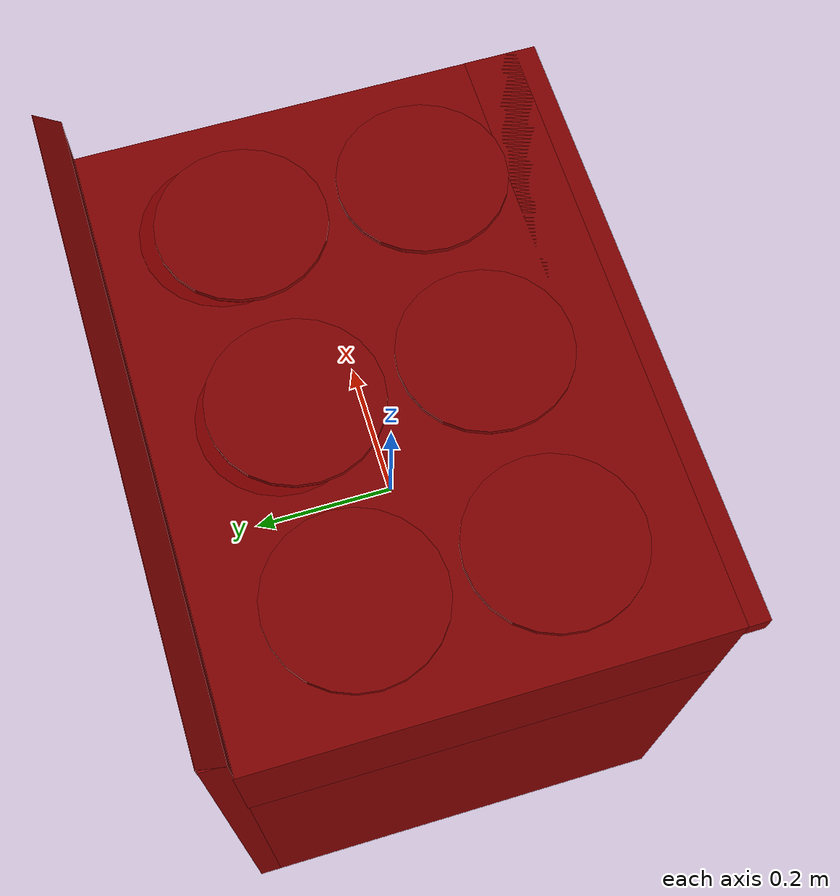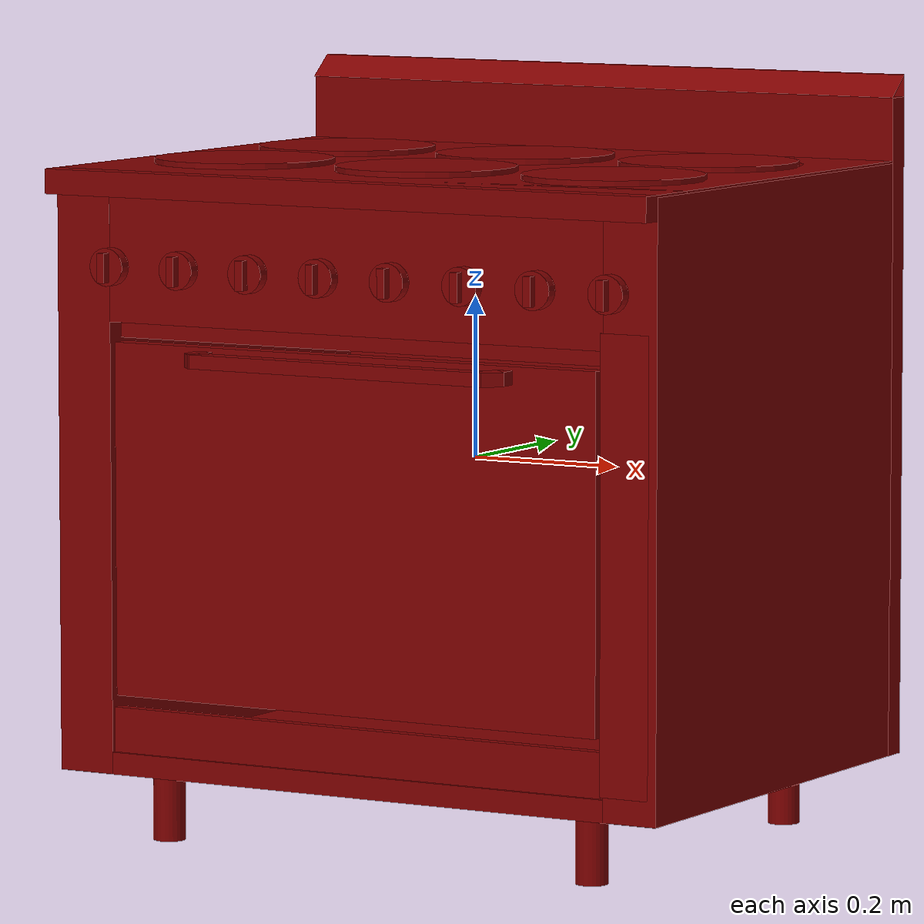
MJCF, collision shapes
<?xml version='1.0' encoding='UTF-8'?>
<mujoco model="model">
  <option timestep="0.002" gravity="0.0 0.0 -9.81"/>
  <compiler angle="radian"/>
  <asset>
    <mesh file="visuals/knob_front_center.obj" name="knob_front_center_vis"/>
    <mesh file="visuals/knob_front_left.obj" name="knob_front_left_vis"/>
    <mesh file="visuals/knob_front_right.obj" name="knob_front_right_vis"/>
    <mesh file="visuals/knob_rear_center.obj" name="knob_rear_center_vis"/>
    <mesh file="visuals/knob_rear_left.obj" name="knob_rear_left_vis"/>
    <mesh file="visuals/knob_rear_right.obj" name="knob_rear_right_vis"/>
    <mesh file="visuals/Body001.obj" name="Body001_vis"/>
    <mesh file="visuals/Door001.obj" name="Door001_vis"/>
    <mesh file="visuals/Door001_Clear.obj" name="Door001_Clear_vis"/>
    <mesh file="visuals/Knob001.obj" name="Knob001_vis"/>
    <mesh file="visuals/Knob002.obj" name="Knob002_vis"/>
    <mesh file="visuals/Shelf001.obj" name="Shelf001_vis"/>
    <mesh file="visuals/Shelf002.obj" name="Shelf002_vis"/>
    <texture file="visuals/T_BC001.png" name="Body001_material" type="2d"/>
    <material name="Body001_material" rgba="1 1 1 1.0" texture="Body001_material" shininess="0.1" specular="3"/>
    <texture file="visuals/T_BC001.png" name="knob_front_center_material" type="2d"/>
    <material name="knob_front_center_material" rgba="1 1 1 1.0" texture="knob_front_center_material" shininess="0.1" specular="3"/>
    <texture file="visuals/T_BC001.png" name="knob_front_left_material" type="2d"/>
    <material name="knob_front_left_material" rgba="1 1 1 1.0" texture="knob_front_left_material" shininess="0.1" specular="3"/>
    <texture file="visuals/T_BC001.png" name="knob_front_right_material" type="2d"/>
    <material name="knob_front_right_material" rgba="1 1 1 1.0" texture="knob_front_right_material" shininess="0.1" specular="3"/>
    <texture file="visuals/T_BC001.png" name="knob_rear_center_material" type="2d"/>
    <material name="knob_rear_center_material" rgba="1 1 1 1.0" texture="knob_rear_center_material" shininess="0.1" specular="3"/>
    <texture file="visuals/T_BC001.png" name="knob_rear_left_material" type="2d"/>
    <material name="knob_rear_left_material" rgba="1 1 1 1.0" texture="knob_rear_left_material" shininess="0.1" specular="3"/>
    <texture file="visuals/T_BC001.png" name="knob_rear_right_material" type="2d"/>
    <material name="knob_rear_right_material" rgba="1 1 1 1.0" texture="knob_rear_right_material" shininess="0.1" specular="3"/>
    <texture file="visuals/T_BC001.png" name="Door001_material" type="2d"/>
    <material name="Door001_material" rgba="1 1 1 1.0" texture="Door001_material" shininess="0.1" specular="3"/>
    <material name="Door001_Clear_material" rgba="0.048628754913806915 0.048628754913806915 0.048628754913806915 0.5" shininess="0.5" specular="0.3103448502657381"/>
    <texture file="visuals/T_BC001.png" name="Knob001_material" type="2d"/>
    <material name="Knob001_material" rgba="1 1 1 1.0" texture="Knob001_material" shininess="0.1" specular="3"/>
    <texture file="visuals/T_BC001.png" name="Knob002_material" type="2d"/>
    <material name="Knob002_material" rgba="1 1 1 1.0" texture="Knob002_material" shininess="0.1" specular="3"/>
    <texture file="visuals/T_BC001.png" name="Shelf001_material" type="2d"/>
    <material name="Shelf001_material" rgba="1 1 1 1.0" texture="Shelf001_material" shininess="0.1" specular="3"/>
    <texture file="visuals/T_BC001.png" name="Shelf002_material" type="2d"/>
    <material name="Shelf002_material" rgba="1 1 1 1.0" texture="Shelf002_material" shininess="0.1" specular="3"/>
  </asset>
  <default>
    <default class="visual">
      <geom conaffinity="0" contype="0" group="1" type="mesh"/>
    </default>
    <default class="collision">
      <geom group="0" rgba="0.5 0 0 0.5"/>
    </default>
    <default class="spawn">
      <geom group="0" rgba="1 1 1 0.5" contype="0" conaffinity="0"/>
      <site group="0" rgba="1 1 1 0.5"/>
    </default>
    <default class="region">
      <geom group="1" conaffinity="0" contype="0" rgba="0 1 0 0"/>
    </default>
  </default>
  <worldbody>
    <body>
      <body name="object">
        <geom mesh="Body001_vis" type="mesh" solimp="0.998 0.998 0.001" solref="0.001 1" friction="0.95 0.3 0.1" class="visual" material="Body001_material"/>
        <geom class="collision" type="box" pos="0.0009991551050916314 0.32055824995040894 0.029305987060070038" size="0.41986000537872314 0.015738798305392265 0.4128369987010956" quat="1.0 0.0 0.0 0.0" density="1000.0"/>
        <geom class="collision" type="box" pos="-6.367638340666677e-17 0.32031571865081787 0.45546573400497437" size="0.42060387134552 0.02045418694615364 0.0005000059027224779" quat="0.9397256374359131 0.34192946553230286 -7.59235930863473e-17 3.5777871277648934e-24" density="1000.0"/>
        <geom class="collision" type="box" pos="-7.158653293349906e-17 0.3360876142978668 0.45539191365242004" size="0.4205954372882843 0.00020943980780430138 0.014329597353935242" quat="1.0 0.0 0.0 0.0" density="1000.0"/>
        <geom class="collision" type="box" pos="0.00106047501321882 0.28167325258255005 -0.09054946899414062" size="0.41953495144844055 0.016514159739017487 0.27135932445526123" quat="1.0 0.0 0.0 0.0" density="1000.0"/>
        <geom class="collision" type="box" pos="0.0008671018294990063 0.0038781710900366306 0.2706303298473358" size="0.4197283387184143 0.3026042878627777 0.09329330176115036" quat="1.0 0.0 0.0 0.0" density="1000.0"/>
        <geom class="collision" type="box" pos="0.0009372210479341447 0.002938526915386319 -0.36970576643943787" size="0.41965821385383606 0.3018638789653778 0.013855750672519207" quat="1.0 0.0 0.0 0.0" density="1000.0"/>
        <geom class="collision" type="box" pos="0.3847431540489197 0.0037059225142002106 -0.011078834533691406" size="0.03611601144075394 0.30272454023361206 0.37200498580932617" quat="1.0 0.0 0.0 0.0" density="1000.0"/>
        <geom class="collision" type="box" pos="-0.38106897473335266 0.0037059225142002106 -0.011078834533691406" size="0.03779188171029091 0.3027247488498688 0.37200498580932617" quat="1.0 0.0 0.0 0.0" density="1000.0"/>
        <geom class="collision" type="box" pos="0.37729743123054504 0.0037059225142002106 -0.07712187618017197" size="0.03237057849764824 0.3027249574661255 0.2757500112056732" quat="1.0 0.0 0.0 0.0" density="1000.0"/>
        <geom class="collision" type="box" pos="0.0009916865965351462 -0.27736935019493103 0.34854137897491455" size="0.4198143482208252 0.04959246888756752 0.015382237732410431" quat="1.0 0.0 0.0 0.0" density="1000.0"/>
        <geom class="collision" type="box" pos="-0.006441392935812473 -0.2696748375892639 0.16858352720737457" size="0.34016379714012146 0.005052691791206598 0.012017963454127312" quat="1.0 0.0 0.0 0.0" density="1000.0"/>
        <geom class="collision" type="box" pos="-0.006441392935812473 -0.28656005859375 -0.32885345816612244" size="0.37182310223579407 0.006954135838896036 0.028841743245720863" quat="1.0 0.0 0.0 0.0" density="1000.0"/>
        <geom class="collision" type="cylinder" pos="-0.2973065674304962 -0.2415791004896164 -0.42189061641693115" size="0.019751792773604393 0.047438085079193115" quat="1.0 0.0 0.0 0.0" density="1000.0"/>
        <geom class="collision" type="cylinder" pos="0.3025815784931183 -0.2415791004896164 -0.42189061641693115" size="0.019751792773604393 0.047438085079193115" quat="1.0 0.0 0.0 0.0" density="1000.0"/>
        <geom class="collision" type="cylinder" pos="-0.2973065674304962 0.24921715259552002 -0.42189061641693115" size="0.019751792773604393 0.047438085079193115" quat="1.0 0.0 0.0 0.0" density="1000.0"/>
        <geom class="collision" type="cylinder" pos="0.3025815784931183 0.24921715259552002 -0.42189061641693115" size="0.019751792773604393 0.047438085079193115" quat="1.0 0.0 0.0 0.0" density="1000.0"/>
        <geom class="collision" type="cylinder" pos="0.2620254456996918 -0.11970210075378418 0.36697089672088623" size="0.11163045465946198 0.003887165803462267" quat="1.0 0.0 0.0 0.0" density="1000.0"/>
        <geom class="collision" type="cylinder" pos="0.2609129548072815 0.12099450081586838 0.36697089672088623" size="0.11163045465946198 0.003887165803462267" quat="1.0 0.0 0.0 0.0" density="1000.0"/>
        <geom class="collision" type="cylinder" pos="0.0013638634700328112 -0.12036958336830139 0.36697089672088623" size="0.11163045465946198 0.003887165803462267" quat="1.0 0.0 0.0 0.0" density="1000.0"/>
        <geom class="collision" type="cylinder" pos="0.0011413681786507368 0.12077201157808304 0.36697089672088623" size="0.11163045465946198 0.003887165803462267" quat="1.0 0.0 0.0 0.0" density="1000.0"/>
        <geom class="collision" type="cylinder" pos="-0.2599511742591858 -0.12036958336830139 0.36697089672088623" size="0.11163045465946198 0.003887165803462267" quat="1.0 0.0 0.0 0.0" density="1000.0"/>
        <geom class="collision" type="cylinder" pos="-0.25972867012023926 0.12121699750423431 0.36697089672088623" size="0.11163045465946198 0.003887165803462267" quat="1.0 0.0 0.0 0.0" density="1000.0"/>
        <geom class="collision" type="box" pos="0.3307049572467804 -0.08799564838409424 -0.05039212852716446" size="0.005058136768639088 0.18542596697807312 0.14292040467262268" quat="1.0 0.0 0.0 0.0" density="1000.0"/>
        <geom class="collision" type="box" pos="-0.32686981558799744 -0.08799564838409424 -0.050392117351293564" size="0.00505813816562295 0.1854260265827179 0.14292046427726746" quat="1.0 0.0 0.0 0.0" density="1000.0"/>
        <geom class="collision" type="box" pos="-0.30610141158103943 -0.08799564838409424 0.03368536755442619" size="0.019839806482195854 0.18543119728565216 0.0019175105262547731" quat="1.0 0.0 0.0 0.0" density="1000.0"/>
        <geom class="collision" type="box" pos="-0.30610141158103943 -0.08799564838409424 -0.0009286291897296906" size="0.01983979530632496 0.1854310780763626 0.0019175105262547731" quat="1.0 0.0 0.0 0.0" density="1000.0"/>
        <geom class="collision" type="box" pos="-0.30610141158103943 -0.08799564838409424 -0.06802652776241302" size="0.019839784130454063 0.18543094396591187 0.0019175105262547731" quat="1.0 0.0 0.0 0.0" density="1000.0"/>
        <geom class="collision" type="box" pos="-0.30610141158103943 -0.08799564838409424 -0.13530026376247406" size="0.019839772954583168 0.18543080985546112 0.0019175105262547731" quat="1.0 0.0 0.0 0.0" density="1000.0"/>
        <geom class="collision" type="box" pos="0.307759553194046 -0.08799567073583603 0.033685412257909775" size="0.019839761778712273 0.18543067574501038 0.0019175105262547731" quat="1.0 0.0 0.0 0.0" density="1000.0"/>
        <geom class="collision" type="box" pos="0.307759553194046 -0.08799567073583603 -0.0009285828564316034" size="0.019839752465486526 0.18543054163455963 0.0019175105262547731" quat="1.0 0.0 0.0 0.0" density="1000.0"/>
        <geom class="collision" type="box" pos="0.307759553194046 -0.08799567073583603 -0.06802648305892944" size="0.01983974128961563 0.1854304075241089 0.0019175105262547731" quat="1.0 0.0 0.0 0.0" density="1000.0"/>
        <geom class="collision" type="box" pos="0.307759553194046 -0.08799567073583603 -0.13530021905899048" size="0.019839730113744736 0.18543027341365814 0.0019175105262547731" quat="1.0 0.0 0.0 0.0" density="1000.0"/>
        <geom class="collision" type="box" pos="0.3362254202365875 -0.08799567073583603 0.08303318172693253" size="0.011012679897248745 0.18315410614013672 0.0037078524474054575" quat="1.0 0.0 0.0 0.0" density="1000.0"/>
        <geom class="collision" type="box" pos="0.3362254500389099 -0.08799567073583603 -0.18539047241210938" size="0.011012679897248745 0.18315410614013672 0.0037078524474054575" quat="1.0 0.0 0.0 0.0" density="1000.0"/>
        <geom class="collision" type="box" pos="-0.3413293659687042 -0.08799564838409424 0.08303312957286835" size="0.011012679897248745 0.18315410614013672 0.0037078524474054575" quat="1.0 0.0 0.0 0.0" density="1000.0"/>
        <geom class="collision" type="box" pos="-0.34132933616638184 -0.08799564838409424 -0.18539051711559296" size="0.011012679897248745 0.18315410614013672 0.0037078524474054575" quat="1.0 0.0 0.0 0.0" density="1000.0"/>
        <body name="knob_front_center">
          <joint axis="0.0 -1.0 0.0" pos="0.06034150347113609 -0.3108179569244385 0.24555693566799164" limited="true" name="knob_front_center_joint" range="0.0 3.490658503988659" type="hinge" damping="0.05" armature="0.001" springref="-0.01"/>
          <geom mesh="knob_front_center_vis" type="mesh" solimp="0.998 0.998 0.001" solref="0.001 1" friction="0.95 0.3 0.1" class="visual" material="knob_front_center_material"/>
          <geom class="collision" type="cylinder" pos="0.060289982706308365 -0.30690068006515503 0.24564823508262634" size="0.02347167767584324 0.00744240265339613" quat="0.7071067094802856 0.7071068286895752 -1.5700929612083792e-16 2.2148510003422914e-23" density="1000.0"/>
          <geom class="collision" type="box" pos="0.059647057205438614 -0.3183431923389435 0.24519884586334229" size="0.005083238240331411 0.0078666927292943 0.018166568130254745" quat="1.0 0.0 0.0 0.0" density="1000.0" name="knob_front_center_main"/>
        </body>
        <body name="knob_front_left">
          <joint axis="0.0 -1.0 0.0" pos="-0.33890798687934875 -0.3108178377151489 0.24555687606334686" limited="true" name="knob_front_left_joint" range="0.0 3.490658503988659" type="hinge" damping="0.05" armature="0.001" springref="-0.01"/>
          <geom mesh="knob_front_left_vis" type="mesh" solimp="0.998 0.998 0.001" solref="0.001 1" friction="0.95 0.3 0.1" class="visual" material="knob_front_left_material"/>
          <geom class="collision" type="cylinder" pos="-0.33865484595298767 -0.30690068006515503 0.24564823508262634" size="0.02347167767584324 0.00744240265339613" quat="0.7071067094802856 0.7071068286895752 -1.5700929612083792e-16 2.2148510003422914e-23" density="1000.0"/>
          <geom class="collision" type="box" pos="-0.3392977714538574 -0.3183431923389435 0.24519884586334229" size="0.005083238240331411 0.00786667037755251 0.018166542053222656" quat="1.0 0.0 0.0 0.0" density="1000.0" name="knob_front_left_main"/>
        </body>
        <body name="knob_front_right">
          <joint axis="0.0 -1.0 0.0" pos="0.35979992151260376 -0.3108179271221161 0.24555693566799164" limited="true" name="knob_front_right_joint" range="0.0 3.5779249665883754" type="hinge" damping="0.05" armature="0.001" springref="-0.01"/>
          <geom mesh="knob_front_right_vis" type="mesh" solimp="0.998 0.998 0.001" solref="0.001 1" friction="0.95 0.3 0.1" class="visual" material="knob_front_right_material"/>
          <geom class="collision" type="cylinder" pos="0.3594783842563629 -0.30690068006515503 0.24564823508262634" size="0.02347167767584324 0.00744240265339613" quat="0.7071067094802856 0.7071068286895752 -1.5700929612083792e-16 2.2148510003422914e-23" density="1000.0"/>
          <geom class="collision" type="box" pos="0.35883548855781555 -0.3183431923389435 0.24519884586334229" size="0.005083238240331411 0.007866709493100643 0.018166588619351387" quat="1.0 0.0 0.0 0.0" density="1000.0" name="knob_front_right_main"/>
        </body>
        <body name="knob_rear_center">
          <joint axis="0.0 -1.0 0.0" pos="0.1608692705631256 -0.3108178973197937 0.24555696547031403" limited="true" name="knob_rear_center_joint" range="0.0 3.5255650890285457" type="hinge" damping="0.05" armature="0.001" springref="-0.01"/>
          <geom mesh="knob_rear_center_vis" type="mesh" solimp="0.998 0.998 0.001" solref="0.001 1" friction="0.95 0.3 0.1" class="visual" material="knob_rear_center_material"/>
          <geom class="collision" type="cylinder" pos="0.1607709378004074 -0.30690068006515503 0.24564823508262634" size="0.02347167767584324 0.00744240265339613" quat="0.7071067094802856 0.7071068286895752 -1.5700929612083792e-16 2.2148510003422914e-23" density="1000.0"/>
          <geom class="collision" type="box" pos="0.16012801229953766 -0.3183431923389435 0.24519884586334229" size="0.005083238240331411 0.007866698317229748 0.018166575580835342" quat="1.0 0.0 0.0 0.0" density="1000.0" name="knob_rear_center_main"/>
        </body>
        <body name="knob_rear_left">
          <joint axis="0.0 -1.0 0.0" pos="-0.2386472523212433 -0.3108178377151489 0.24555687606334686" limited="true" name="knob_rear_left_joint" range="0.0 3.5255650890285457" type="hinge" damping="0.05" armature="0.001" springref="-0.01"/>
          <geom mesh="knob_rear_left_vis" type="mesh" solimp="0.998 0.998 0.001" solref="0.001 1" friction="0.95 0.3 0.1" class="visual" material="knob_rear_left_material"/>
          <geom class="collision" type="cylinder" pos="-0.23832663893699646 -0.30690068006515503 0.24564823508262634" size="0.02347167767584324 0.00744240265339613" quat="0.7071067094802856 0.7071068286895752 -1.5700929612083792e-16 2.2148510003422914e-23" density="1000.0"/>
          <geom class="collision" type="box" pos="-0.2389695644378662 -0.3183431923389435 0.24519884586334229" size="0.005083238240331411 0.007866675965487957 0.018166549503803253" quat="1.0 0.0 0.0 0.0" density="1000.0" name="knob_rear_left_main"/>
        </body>
        <body name="knob_rear_right">
          <joint axis="0.0 -1.0 0.0" pos="0.26078206300735474 -0.31081801652908325 0.24555693566799164" limited="true" name="knob_rear_right_joint" range="0.0 3.5255650890285457" type="hinge" damping="0.05" armature="0.001" springref="-0.01"/>
          <geom mesh="knob_rear_right_vis" type="mesh" solimp="0.998 0.998 0.001" solref="0.001 1" friction="0.95 0.3 0.1" class="visual" material="knob_rear_right_material"/>
          <geom class="collision" type="cylinder" pos="0.2606376111507416 -0.30690068006515503 0.24564823508262634" size="0.02347167767584324 0.00744240265339613" quat="0.7071067094802856 0.7071068286895752 -1.5700929612083792e-16 2.2148510003422914e-23" density="1000.0"/>
          <geom class="collision" type="box" pos="0.2599946856498718 -0.3183431923389435 0.24519884586334229" size="0.005083238240331411 0.007866703905165195 0.01816658116877079" quat="1.0 0.0 0.0 0.0" density="1000.0" name="knob_rear_right_main"/>
        </body>
        <body name="Door001">
          <joint axis="1.0 0.0 0.0" pos="0.0016129817813634872 -0.2922552824020386 -0.29685622453689575" limited="true" name="Door001_joint" range="0.0 1.5707963267948966" type="hinge" damping="1" frictionloss="1" armature=".01" stiffness="0.05"/>
          <geom mesh="Door001_vis" type="mesh" solimp="0.998 0.998 0.001" solref="0.001 1" friction="0.95 0.3 0.1" class="visual" material="Door001_material"/>
          <geom class="collision" type="box" pos="-0.000584539317060262 -0.284593790769577 -0.06605206429958344" size="0.3376811742782593 0.011523301713168621 0.21855773031711578" quat="1.0 0.0 0.0 0.0" density="1000.0"/>
          <geom class="collision" type="box" pos="-0.0001881122589111328 -0.3264852464199066 0.13902106881141663" size="0.2059531956911087 0.010826461017131805 0.008509280160069466" quat="1.0 0.0 0.0 0.0" density="1000.0"/>
          <geom class="collision" type="box" pos="0.20505066215991974 -0.318261057138443 0.13902106881141663" size="0.014032981358468533 0.014184807427227497 0.008509357459843159" quat="0.921194314956665 0.0 0.0 0.38910287618637085" density="1000.0"/>
          <geom class="collision" type="box" pos="0.2124926745891571 -0.30020400881767273 0.13902106881141663" size="0.011084587313234806 0.018823664635419846 0.008509357459843159" quat="1.0 0.0 0.0 0.0" density="1000.0"/>
          <geom class="collision" type="box" pos="-0.20834961533546448 -0.3052693009376526 0.13902106881141663" size="0.01097660232335329 0.018761852756142616 0.008509357459843159" quat="1.0 0.0 0.0 0.0" density="1000.0"/>
          <geom class="collision" type="box" pos="-0.20250751078128815 -0.32134079933166504 0.13902106881141663" size="0.01035991683602333 0.013933978043496609 0.008509357459843159" quat="0.3940070867538452 0.0 0.0 0.9191073775291443" density="1000.0"/>
          <body name="Door001_Clear">
            <geom mesh="Door001_Clear_vis" type="mesh" solimp="0.998 0.998 0.001" solref="0.001 1" friction="0.95 0.3 0.1" class="visual" material="Door001_Clear_material"/>
          </body>
        </body>
        <body name="Knob001">
          <joint axis="0.0 1.0 0.0" pos="-0.13926179707050323 -0.3108179271221161 0.24555693566799164" limited="true" name="Knob001_joint" range="0.0 4.014257279586958" type="hinge" damping="0.05" armature="0.001" springref="-0.01"/>
          <geom mesh="Knob001_vis" type="mesh" solimp="0.998 0.998 0.001" solref="0.001 1" friction="0.95 0.3 0.1" class="visual" material="Knob001_material"/>
          <geom class="collision" type="cylinder" pos="-0.13933701813220978 -0.30690068006515503 0.24564823508262634" size="0.02347167767584324 0.00744240265339613" quat="0.7071067094802856 0.7071068286895752 -1.5700929612083792e-16 2.2148510003422914e-23" density="1000.0"/>
          <geom class="collision" type="box" pos="-0.13997994363307953 -0.3183431923389435 0.24519884586334229" size="0.005083238240331411 0.007866681553423405 0.0181665550917387" quat="1.0 0.0 0.0 0.0" density="1000.0"/>
        </body>
        <body name="Knob002">
          <joint axis="0.0 1.0 0.0" pos="-0.03939433395862579 -0.3108179569244385 0.24555693566799164" limited="true" name="Knob002_joint" range="0.0 3.2637657012293966" type="hinge" damping="0.05" armature="0.001" springref="-0.01"/>
          <geom mesh="Knob002_vis" type="mesh" solimp="0.998 0.998 0.001" solref="0.001 1" friction="0.95 0.3 0.1" class="visual" material="Knob002_material"/>
          <geom class="collision" type="cylinder" pos="-0.0393357127904892 -0.30690068006515503 0.24564823508262634" size="0.02347167767584324 0.00744240265339613" quat="0.7071067094802856 0.7071068286895752 -1.5700929612083792e-16 2.2148510003422914e-23" density="1000.0"/>
          <geom class="collision" type="box" pos="-0.03997863829135895 -0.3183431923389435 0.24519884586334229" size="0.005083238240331411 0.007866687141358852 0.018166562542319298" quat="1.0 0.0 0.0 0.0" density="1000.0"/>
        </body>
        <body name="Shelf001">
          <joint axis="0.0 -1.0 0.0" pos="-0.0015620995545759797 -0.08939860016107559 0.04237963259220123" limited="true" name="Shelf001_joint" range="0.0 0.3" type="slide" damping="1" frictionloss="1" armature=".01" stiffness="0.05"/>
          <geom mesh="Shelf001_vis" type="mesh" solimp="0.998 0.998 0.001" solref="0.001 1" friction="0.95 0.3 0.1" class="visual" material="Shelf001_material"/>
          <geom class="collision" type="box" pos="0.0 -0.09224695712327957 0.042326919734478" size="0.31443482637405396 0.1782684624195099 0.004741080570966005" quat="1.0 0.0 0.0 0.0" density="1000.0"/>
        </body>
        <body name="Shelf002">
          <joint axis="0.0 -1.0 0.0" pos="-0.0014364566886797547 -0.0893985778093338 -0.05968460440635681" limited="true" name="Shelf002_joint" range="0.0 0.3" type="slide" damping="1" frictionloss="1" armature=".01" stiffness="0.05"/>
          <geom mesh="Shelf002_vis" type="mesh" solimp="0.998 0.998 0.001" solref="0.001 1" friction="0.95 0.3 0.1" class="visual" material="Shelf002_material"/>
          <geom class="collision" type="box" pos="0.0 -0.09224695712327957 -0.06016969680786133" size="0.31443482637405396 0.1782684624195099 0.004741081967949867" quat="1.0 0.0 0.0 0.0" density="1000.0"/>
        </body>
        <geom class="region" name="reg_int" type="box" pos="0.0009530335664749146 -0.0013412535190582275 -0.08964341878890991" size="0.346488282084465 0.2720003128051758 0.26857447624206543"/>
        <site type="cylinder" rgba="0.5 0 0 0.5" size="0.08490437269210815 0.0001" pos="-0.2602962851524353 0.1317937821149826 0.36463239789009094" name="burner_on_rear_left"/>
        <site type="cylinder" rgba="0.5 0 0 0.5" size="0.1030343696475029 0.0001" pos="-0.012764574028551579 0.1435437798500061 0.36477190256118774" name="burner_on_rear_center"/>
        <site type="cylinder" rgba="0.5 0 0 0.5" size="0.10889677703380585 0.0001" pos="0.2580289840698242 0.143657848238945 0.36467739939689636" name="burner_on_rear_right"/>
        <site type="cylinder" rgba="0.5 0 0 0.5" size="0.10935959219932556 0.0001" pos="-0.25987282395362854 -0.11982551962137222 0.36482030153274536" name="burner_on_front_left"/>
        <site type="cylinder" rgba="0.5 0 0 0.5" size="0.0966821163892746 0.0001" pos="-0.013433662243187428 -0.11818808317184448 0.3648717999458313" name="burner_on_front_center"/>
        <site type="cylinder" rgba="0.5 0 0 0.5" size="0.08166041970252991 0.0001" pos="0.2578319013118744 -0.11594367027282715 0.36488378047943115" name="burner_on_front_right"/>
        <site name="burner_rear_left_place_site" type="cylinder" rgba="0.5 0 0 0" size="0.08490437269210815 4.999999873689376e-05" pos="-0.2602962851524353 0.1317937821149826 0.36463239789009094"/>
        <site name="burner_rear_center_place_site" type="cylinder" rgba="0.5 0 0 0" size="0.1030343696475029 4.999999873689376e-05" pos="-0.012764574028551579 0.1435437798500061 0.36477190256118774"/>
        <site name="burner_rear_right_place_site" type="cylinder" rgba="0.5 0 0 0" size="0.10889677703380585 4.999999873689376e-05" pos="0.2580289840698242 0.143657848238945 0.36467739939689636"/>
        <site name="burner_front_left_place_site" type="cylinder" rgba="0.5 0 0 0" size="0.10935959219932556 5.4252926929621026e-05" pos="-0.25987282395362854 -0.11982551962137222 0.36482030153274536"/>
        <site name="burner_front_center_place_site" type="cylinder" rgba="0.5 0 0 0" size="0.0966821163892746 4.999999873689376e-05" pos="-0.013433662243187428 -0.11818808317184448 0.3648717999458313"/>
        <site name="burner_front_right_place_site" type="cylinder" rgba="0.5 0 0 0" size="0.08166041970252991 4.999999873689376e-05" pos="0.2578319013118744 -0.11594367027282715 0.36488378047943115"/>
        <geom class="region" name="reg_main" type="box" pos="0.000999148702248931 0.018583834171295166 -0.0528859943151474" size="0.41986003518104553 0.31771320104599 0.416809618473053"/>
      </body>
    </body>
  </worldbody>
  <actuator>
    <motor name="knob_front_center_joint_actuator" joint="knob_front_center_joint" gear="10"/>
    <motor name="knob_front_left_joint_actuator" joint="knob_front_left_joint" gear="10"/>
    <motor name="knob_front_right_joint_actuator" joint="knob_front_right_joint" gear="10"/>
    <motor name="knob_rear_center_joint_actuator" joint="knob_rear_center_joint" gear="10"/>
    <motor name="knob_rear_left_joint_actuator" joint="knob_rear_left_joint" gear="10"/>
    <motor name="knob_rear_right_joint_actuator" joint="knob_rear_right_joint" gear="10"/>
    <motor name="Door001_joint_actuator" joint="Door001_joint" gear="50"/>
    <motor name="Knob001_joint_actuator" joint="Knob001_joint" gear="50"/>
    <motor name="Knob002_joint_actuator" joint="Knob002_joint" gear="50"/>
    <motor name="Shelf001_joint_actuator" joint="Shelf001_joint" gear="50"/>
    <motor name="Shelf002_joint_actuator" joint="Shelf002_joint" gear="50"/>
  </actuator>
</mujoco>
